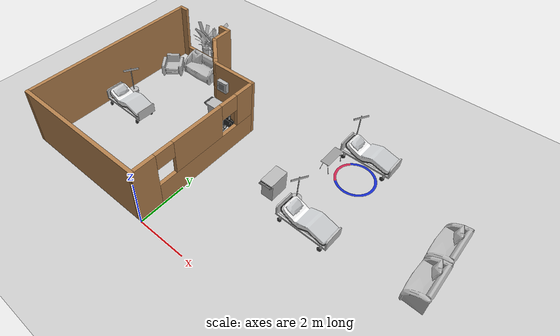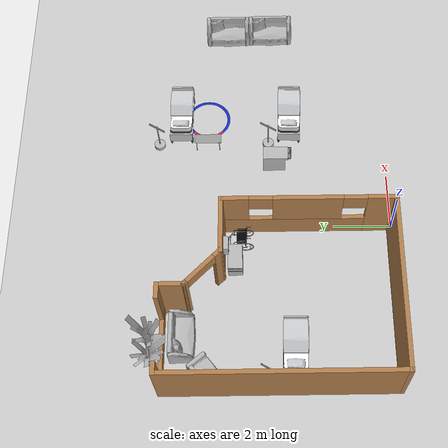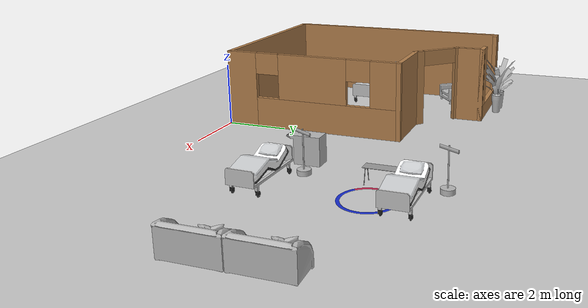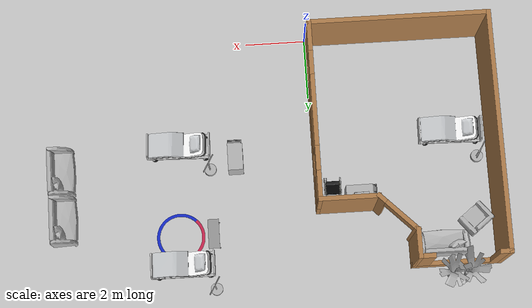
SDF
<sdf version="1.6">
 <world name="default">
  <model name="ground_plane">
   <static>1</static>
   <link name="link">
    <collision name="collision">
     <geometry><plane><normal>0 0 1</normal><size>100 100</size></plane></geometry>
     <surface>
      <contact><collide_bitmask>65535</collide_bitmask></contact>
      <friction><ode><mu>100</mu><mu2>50</mu2></ode></friction>
     </surface>
    </collision>
    <visual name="visual">
     <cast_shadows>0</cast_shadows>
     <geometry><plane><normal>0 0 1</normal><size>100 100</size></plane></geometry>
     <material>
      <script><uri>file://media/materials/scripts/gazebo.material</uri><name>Gazebo/Grey</name></script>
     </material>
    </visual>
   </link>
  </model>
  <model name="hospital_room_empty">
   <link name="Wall_0">
    <pose>-4e-06 -3.9165 0 0 -0 0</pose>
    <visual name="Wall_0_Visual">
     <pose>0 0 1.25 0 -0 0</pose>
     <geometry><box><size>6 0.15 2.5</size></box></geometry>
     <material>
      <script><uri>file://media/materials/scripts/gazebo.material</uri><name>Gazebo/Wood</name></script>
      <ambient>1 1 1 1</ambient>
     </material>
     <meta><layer>0</layer></meta>
    </visual>
    <collision name="Wall_0_Collision">
     <pose>0 0 1.25 0 -0 0</pose>
     <geometry><box><size>6 0.15 2.5</size></box></geometry>
     <surface>
      <friction>
       <ode><mu>1</mu><mu2>1</mu2><fdir1>0 0 0</fdir1><slip1>0</slip1><slip2>0</slip2></ode>
       <torsional>
        <coefficient>1</coefficient>
        <patch_radius>0</patch_radius>
        <surface_radius>0</surface_radius>
        <use_patch_radius>1</use_patch_radius>
        <ode><slip>0</slip></ode>
       </torsional>
      </friction>
      <bounce><restitution_coefficient>0</restitution_coefficient><threshold>1e+06</threshold></bounce>
      <contact>
       <collide_without_contact>0</collide_without_contact>
       <collide_without_contact_bitmask>1</collide_without_contact_bitmask>
       <collide_bitmask>1</collide_bitmask>
       <ode>
        <soft_cfm>0</soft_cfm>
        <soft_erp>0.2</soft_erp>
        <kp>1e+13</kp>
        <kd>1</kd>
        <max_vel>0.01</max_vel>
        <min_depth>0</min_depth>
       </ode>
       <bullet>
        <split_impulse>1</split_impulse>
        <split_impulse_penetration_threshold>-0.01</split_impulse_penetration_threshold>
        <soft_cfm>0</soft_cfm>
        <soft_erp>0.2</soft_erp>
        <kp>1e+13</kp>
        <kd>1</kd>
       </bullet>
      </contact>
     </surface>
    </collision>
   </link>
   <link name="Wall_3">
    <pose>-2.925 0 0 0 -0 1.5708</pose>
    <visual name="Wall_3_Visual">
     <pose>0 0 1.25 0 -0 0</pose>
     <geometry><box><size>7.98302 0.15 2.5</size></box></geometry>
     <material>
      <script><uri>file://media/materials/scripts/gazebo.material</uri><name>Gazebo/Wood</name></script>
      <ambient>1 1 1 1</ambient>
     </material>
     <meta><layer>0</layer></meta>
    </visual>
    <collision name="Wall_3_Collision">
     <pose>0 0 1.25 0 -0 0</pose>
     <geometry><box><size>7.98302 0.15 2.5</size></box></geometry>
     <surface>
      <friction>
       <ode><mu>1</mu><mu2>1</mu2><fdir1>0 0 0</fdir1><slip1>0</slip1><slip2>0</slip2></ode>
       <torsional>
        <coefficient>1</coefficient>
        <patch_radius>0</patch_radius>
        <surface_radius>0</surface_radius>
        <use_patch_radius>1</use_patch_radius>
        <ode><slip>0</slip></ode>
       </torsional>
      </friction>
      <bounce><restitution_coefficient>0</restitution_coefficient><threshold>1e+06</threshold></bounce>
      <contact>
       <collide_without_contact>0</collide_without_contact>
       <collide_without_contact_bitmask>1</collide_without_contact_bitmask>
       <collide_bitmask>1</collide_bitmask>
       <ode>
        <soft_cfm>0</soft_cfm>
        <soft_erp>0.2</soft_erp>
        <kp>1e+13</kp>
        <kd>1</kd>
        <max_vel>0.01</max_vel>
        <min_depth>0</min_depth>
       </ode>
       <bullet>
        <split_impulse>1</split_impulse>
        <split_impulse_penetration_threshold>-0.01</split_impulse_penetration_threshold>
        <soft_cfm>0</soft_cfm>
        <soft_erp>0.2</soft_erp>
        <kp>1e+13</kp>
        <kd>1</kd>
       </bullet>
      </contact>
     </surface>
    </collision>
   </link>
   <link name="Wall_4">
    <pose>-1.5 3.9165 0 0 -0 0</pose>
    <visual name="Wall_4_Visual_0">
     <pose>-1.28125 0 1.25 0 -0 0</pose>
     <geometry><box><size>0.437506 0.15 2.5</size></box></geometry>
     <material>
      <script><uri>file://media/materials/scripts/gazebo.material</uri><name>Gazebo/Wood</name></script>
      <ambient>1 1 1 1</ambient>
     </material>
     <meta><layer>0</layer></meta>
    </visual>
    <visual name="Wall_4_Visual_1">
     <pose>0.218753 0 0.25 0 -0 0</pose>
     <geometry><box><size>2.56249 0.15 0.5</size></box></geometry>
     <material>
      <script><uri>file://media/materials/scripts/gazebo.material</uri><name>Gazebo/Wood</name></script>
      <ambient>1 1 1 1</ambient>
     </material>
     <meta><layer>0</layer></meta>
    </visual>
    <visual name="Wall_4_Visual_2">
     <pose>1.21875 0 1.5 0 -0 0</pose>
     <geometry><box><size>0.562494 0.15 2</size></box></geometry>
     <material>
      <script><uri>file://media/materials/scripts/gazebo.material</uri><name>Gazebo/Wood</name></script>
      <ambient>1 1 1 1</ambient>
     </material>
     <meta><layer>0</layer></meta>
    </visual>
    <collision name="Wall_4_Collision_0">
     <pose>-1.28125 0 1.25 0 -0 0</pose>
     <geometry><box><size>0.437506 0.15 2.5</size></box></geometry>
     <surface>
      <friction>
       <ode><mu>1</mu><mu2>1</mu2><fdir1>0 0 0</fdir1><slip1>0</slip1><slip2>0</slip2></ode>
       <torsional>
        <coefficient>1</coefficient>
        <patch_radius>0</patch_radius>
        <surface_radius>0</surface_radius>
        <use_patch_radius>1</use_patch_radius>
        <ode><slip>0</slip></ode>
       </torsional>
      </friction>
      <bounce><restitution_coefficient>0</restitution_coefficient><threshold>1e+06</threshold></bounce>
      <contact>
       <collide_without_contact>0</collide_without_contact>
       <collide_without_contact_bitmask>1</collide_without_contact_bitmask>
       <collide_bitmask>1</collide_bitmask>
       <ode>
        <soft_cfm>0</soft_cfm>
        <soft_erp>0.2</soft_erp>
        <kp>1e+13</kp>
        <kd>1</kd>
        <max_vel>0.01</max_vel>
        <min_depth>0</min_depth>
       </ode>
       <bullet>
        <split_impulse>1</split_impulse>
        <split_impulse_penetration_threshold>-0.01</split_impulse_penetration_threshold>
        <soft_cfm>0</soft_cfm>
        <soft_erp>0.2</soft_erp>
        <kp>1e+13</kp>
        <kd>1</kd>
       </bullet>
      </contact>
     </surface>
    </collision>
    <collision name="Wall_4_Collision_1">
     <pose>0.218753 0 0.25 0 -0 0</pose>
     <geometry><box><size>2.56249 0.15 0.5</size></box></geometry>
     <surface>
      <friction>
       <ode><mu>1</mu><mu2>1</mu2><fdir1>0 0 0</fdir1><slip1>0</slip1><slip2>0</slip2></ode>
       <torsional>
        <coefficient>1</coefficient>
        <patch_radius>0</patch_radius>
        <surface_radius>0</surface_radius>
        <use_patch_radius>1</use_patch_radius>
        <ode><slip>0</slip></ode>
       </torsional>
      </friction>
      <bounce><restitution_coefficient>0</restitution_coefficient><threshold>1e+06</threshold></bounce>
      <contact>
       <collide_without_contact>0</collide_without_contact>
       <collide_without_contact_bitmask>1</collide_without_contact_bitmask>
       <collide_bitmask>1</collide_bitmask>
       <ode>
        <soft_cfm>0</soft_cfm>
        <soft_erp>0.2</soft_erp>
        <kp>1e+13</kp>
        <kd>1</kd>
        <max_vel>0.01</max_vel>
        <min_depth>0</min_depth>
       </ode>
       <bullet>
        <split_impulse>1</split_impulse>
        <split_impulse_penetration_threshold>-0.01</split_impulse_penetration_threshold>
        <soft_cfm>0</soft_cfm>
        <soft_erp>0.2</soft_erp>
        <kp>1e+13</kp>
        <kd>1</kd>
       </bullet>
      </contact>
     </surface>
    </collision>
    <collision name="Wall_4_Collision_2">
     <pose>1.21875 0 1.5 0 -0 0</pose>
     <geometry><box><size>0.562494 0.15 2</size></box></geometry>
     <surface>
      <friction>
       <ode><mu>1</mu><mu2>1</mu2><fdir1>0 0 0</fdir1><slip1>0</slip1><slip2>0</slip2></ode>
       <torsional>
        <coefficient>1</coefficient>
        <patch_radius>0</patch_radius>
        <surface_radius>0</surface_radius>
        <use_patch_radius>1</use_patch_radius>
        <ode><slip>0</slip></ode>
       </torsional>
      </friction>
      <bounce><restitution_coefficient>0</restitution_coefficient><threshold>1e+06</threshold></bounce>
      <contact>
       <collide_without_contact>0</collide_without_contact>
       <collide_without_contact_bitmask>1</collide_without_contact_bitmask>
       <collide_bitmask>1</collide_bitmask>
       <ode>
        <soft_cfm>0</soft_cfm>
        <soft_erp>0.2</soft_erp>
        <kp>1e+13</kp>
        <kd>1</kd>
        <max_vel>0.01</max_vel>
        <min_depth>0</min_depth>
       </ode>
       <bullet>
        <split_impulse>1</split_impulse>
        <split_impulse_penetration_threshold>-0.01</split_impulse_penetration_threshold>
        <soft_cfm>0</soft_cfm>
        <soft_erp>0.2</soft_erp>
        <kp>1e+13</kp>
        <kd>1</kd>
       </bullet>
      </contact>
     </surface>
    </collision>
   </link>
   <link name="Wall_5">
    <pose>-0.075004 3.4915 0 0 0 -1.5708</pose>
    <visual name="Wall_5_Visual">
     <pose>0 0 1.25 0 -0 0</pose>
     <geometry><box><size>1 0.15 2.5</size></box></geometry>
     <material>
      <script><uri>file://media/materials/scripts/gazebo.material</uri><name>Gazebo/Wood</name></script>
      <ambient>1 1 1 1</ambient>
     </material>
     <meta><layer>0</layer></meta>
    </visual>
    <collision name="Wall_5_Collision">
     <pose>0 0 1.25 0 -0 0</pose>
     <geometry><box><size>1 0.15 2.5</size></box></geometry>
     <surface>
      <friction>
       <ode><mu>1</mu><mu2>1</mu2><fdir1>0 0 0</fdir1><slip1>0</slip1><slip2>0</slip2></ode>
       <torsional>
        <coefficient>1</coefficient>
        <patch_radius>0</patch_radius>
        <surface_radius>0</surface_radius>
        <use_patch_radius>1</use_patch_radius>
        <ode><slip>0</slip></ode>
       </torsional>
      </friction>
      <bounce><restitution_coefficient>0</restitution_coefficient><threshold>1e+06</threshold></bounce>
      <contact>
       <collide_without_contact>0</collide_without_contact>
       <collide_without_contact_bitmask>1</collide_without_contact_bitmask>
       <collide_bitmask>1</collide_bitmask>
       <ode>
        <soft_cfm>0</soft_cfm>
        <soft_erp>0.2</soft_erp>
        <kp>1e+13</kp>
        <kd>1</kd>
        <max_vel>0.01</max_vel>
        <min_depth>0</min_depth>
       </ode>
       <bullet>
        <split_impulse>1</split_impulse>
        <split_impulse_penetration_threshold>-0.01</split_impulse_penetration_threshold>
        <soft_cfm>0</soft_cfm>
        <soft_erp>0.2</soft_erp>
        <kp>1e+13</kp>
        <kd>1</kd>
       </bullet>
      </contact>
     </surface>
    </collision>
   </link>
   <link name="Wall_7">
    <pose>2.925 -1 0 0 -0 1.5708</pose>
    <visual name="Wall_7_Visual_0">
     <pose>-2.47597 0 1.25 0 -0 0</pose>
     <geometry><box><size>1.03106 0.15 2.5</size></box></geometry>
     <material>
      <script><uri>file://media/materials/scripts/gazebo.material</uri><name>Gazebo/Wood</name></script>
      <ambient>0.921569 0.807843 0.615686 1</ambient>
     </material>
     <meta><layer>0</layer></meta>
    </visual>
    <visual name="Wall_7_Visual_1">
     <pose>0.515531 0 0.5 0 -0 0</pose>
     <geometry><box><size>4.95194 0.15 1</size></box></geometry>
     <material>
      <script><uri>file://media/materials/scripts/gazebo.material</uri><name>Gazebo/Wood</name></script>
      <ambient>0.921569 0.807843 0.615686 1</ambient>
     </material>
     <meta><layer>0</layer></meta>
    </visual>
    <visual name="Wall_7_Visual_2">
     <pose>0.016139 0 1.75 0 -0 0</pose>
     <geometry><box><size>2.35315 0.15 1.5</size></box></geometry>
     <material>
      <script><uri>file://media/materials/scripts/gazebo.material</uri><name>Gazebo/Wood</name></script>
      <ambient>0.921569 0.807843 0.615686 1</ambient>
     </material>
     <meta><layer>0</layer></meta>
    </visual>
    <visual name="Wall_7_Visual_3">
     <pose>2.49211 0 1.75 0 -0 0</pose>
     <geometry><box><size>0.998785 0.15 1.5</size></box></geometry>
     <material>
      <script><uri>file://media/materials/scripts/gazebo.material</uri><name>Gazebo/Wood</name></script>
      <ambient>0.921569 0.807843 0.615686 1</ambient>
     </material>
     <meta><layer>0</layer></meta>
    </visual>
    <visual name="Wall_7_Visual_4">
     <pose>-1.56044 0 2.15 0 -0 0</pose>
     <geometry><box><size>0.8 0.15 0.7</size></box></geometry>
     <material>
      <script><uri>file://media/materials/scripts/gazebo.material</uri><name>Gazebo/Wood</name></script>
      <ambient>0.921569 0.807843 0.615686 1</ambient>
     </material>
     <meta><layer>0</layer></meta>
    </visual>
    <visual name="Wall_7_Visual_5">
     <pose>1.59272 0 2.15 0 -0 0</pose>
     <geometry><box><size>0.8 0.15 0.7</size></box></geometry>
     <material>
      <script><uri>file://media/materials/scripts/gazebo.material</uri><name>Gazebo/Wood</name></script>
      <ambient>0.921569 0.807843 0.615686 1</ambient>
     </material>
     <meta><layer>0</layer></meta>
    </visual>
    <collision name="Wall_7_Collision_0">
     <pose>-2.47597 0 1.25 0 -0 0</pose>
     <geometry><box><size>1.03106 0.15 2.5</size></box></geometry>
     <surface>
      <friction>
       <ode><mu>1</mu><mu2>1</mu2><fdir1>0 0 0</fdir1><slip1>0</slip1><slip2>0</slip2></ode>
       <torsional>
        <coefficient>1</coefficient>
        <patch_radius>0</patch_radius>
        <surface_radius>0</surface_radius>
        <use_patch_radius>1</use_patch_radius>
        <ode><slip>0</slip></ode>
       </torsional>
      </friction>
      <bounce><restitution_coefficient>0</restitution_coefficient><threshold>1e+06</threshold></bounce>
      <contact>
       <collide_without_contact>0</collide_without_contact>
       <collide_without_contact_bitmask>1</collide_without_contact_bitmask>
       <collide_bitmask>1</collide_bitmask>
       <ode>
        <soft_cfm>0</soft_cfm>
        <soft_erp>0.2</soft_erp>
        <kp>1e+13</kp>
        <kd>1</kd>
        <max_vel>0.01</max_vel>
        <min_depth>0</min_depth>
       </ode>
       <bullet>
        <split_impulse>1</split_impulse>
        <split_impulse_penetration_threshold>-0.01</split_impulse_penetration_threshold>
        <soft_cfm>0</soft_cfm>
        <soft_erp>0.2</soft_erp>
        <kp>1e+13</kp>
        <kd>1</kd>
       </bullet>
      </contact>
     </surface>
    </collision>
    <collision name="Wall_7_Collision_1">
     <pose>0.515531 0 0.5 0 -0 0</pose>
     <geometry><box><size>4.95194 0.15 1</size></box></geometry>
     <surface>
      <friction>
       <ode><mu>1</mu><mu2>1</mu2><fdir1>0 0 0</fdir1><slip1>0</slip1><slip2>0</slip2></ode>
       <torsional>
        <coefficient>1</coefficient>
        <patch_radius>0</patch_radius>
        <surface_radius>0</surface_radius>
        <use_patch_radius>1</use_patch_radius>
        <ode><slip>0</slip></ode>
       </torsional>
      </friction>
      <bounce><restitution_coefficient>0</restitution_coefficient><threshold>1e+06</threshold></bounce>
      <contact>
       <collide_without_contact>0</collide_without_contact>
       <collide_without_contact_bitmask>1</collide_without_contact_bitmask>
       <collide_bitmask>1</collide_bitmask>
       <ode>
        <soft_cfm>0</soft_cfm>
        <soft_erp>0.2</soft_erp>
        <kp>1e+13</kp>
        <kd>1</kd>
        <max_vel>0.01</max_vel>
        <min_depth>0</min_depth>
       </ode>
       <bullet>
        <split_impulse>1</split_impulse>
        <split_impulse_penetration_threshold>-0.01</split_impulse_penetration_threshold>
        <soft_cfm>0</soft_cfm>
        <soft_erp>0.2</soft_erp>
        <kp>1e+13</kp>
        <kd>1</kd>
       </bullet>
      </contact>
     </surface>
    </collision>
    <collision name="Wall_7_Collision_2">
     <pose>0.016139 0 1.75 0 -0 0</pose>
     <geometry><box><size>2.35315 0.15 1.5</size></box></geometry>
     <surface>
      <friction>
       <ode><mu>1</mu><mu2>1</mu2><fdir1>0 0 0</fdir1><slip1>0</slip1><slip2>0</slip2></ode>
       <torsional>
        <coefficient>1</coefficient>
        <patch_radius>0</patch_radius>
        <surface_radius>0</surface_radius>
        <use_patch_radius>1</use_patch_radius>
        <ode><slip>0</slip></ode>
       </torsional>
      </friction>
      <bounce><restitution_coefficient>0</restitution_coefficient><threshold>1e+06</threshold></bounce>
      <contact>
       <collide_without_contact>0</collide_without_contact>
       <collide_without_contact_bitmask>1</collide_without_contact_bitmask>
       <collide_bitmask>1</collide_bitmask>
       <ode>
        <soft_cfm>0</soft_cfm>
        <soft_erp>0.2</soft_erp>
        <kp>1e+13</kp>
        <kd>1</kd>
        <max_vel>0.01</max_vel>
        <min_depth>0</min_depth>
       </ode>
       <bullet>
        <split_impulse>1</split_impulse>
        <split_impulse_penetration_threshold>-0.01</split_impulse_penetration_threshold>
        <soft_cfm>0</soft_cfm>
        <soft_erp>0.2</soft_erp>
        <kp>1e+13</kp>
        <kd>1</kd>
       </bullet>
      </contact>
     </surface>
    </collision>
    <collision name="Wall_7_Collision_3">
     <pose>2.49211 0 1.75 0 -0 0</pose>
     <geometry><box><size>0.998785 0.15 1.5</size></box></geometry>
     <surface>
      <friction>
       <ode><mu>1</mu><mu2>1</mu2><fdir1>0 0 0</fdir1><slip1>0</slip1><slip2>0</slip2></ode>
       <torsional>
        <coefficient>1</coefficient>
        <patch_radius>0</patch_radius>
        <surface_radius>0</surface_radius>
        <use_patch_radius>1</use_patch_radius>
        <ode><slip>0</slip></ode>
       </torsional>
      </friction>
      <bounce><restitution_coefficient>0</restitution_coefficient><threshold>1e+06</threshold></bounce>
      <contact>
       <collide_without_contact>0</collide_without_contact>
       <collide_without_contact_bitmask>1</collide_without_contact_bitmask>
       <collide_bitmask>1</collide_bitmask>
       <ode>
        <soft_cfm>0</soft_cfm>
        <soft_erp>0.2</soft_erp>
        <kp>1e+13</kp>
        <kd>1</kd>
        <max_vel>0.01</max_vel>
        <min_depth>0</min_depth>
       </ode>
       <bullet>
        <split_impulse>1</split_impulse>
        <split_impulse_penetration_threshold>-0.01</split_impulse_penetration_threshold>
        <soft_cfm>0</soft_cfm>
        <soft_erp>0.2</soft_erp>
        <kp>1e+13</kp>
        <kd>1</kd>
       </bullet>
      </contact>
     </surface>
    </collision>
    <collision name="Wall_7_Collision_4">
     <pose>-1.56044 0 2.15 0 -0 0</pose>
     <geometry><box><size>0.8 0.15 0.7</size></box></geometry>
     <surface>
      <friction>
       <ode><mu>1</mu><mu2>1</mu2><fdir1>0 0 0</fdir1><slip1>0</slip1><slip2>0</slip2></ode>
       <torsional>
        <coefficient>1</coefficient>
        <patch_radius>0</patch_radius>
        <surface_radius>0</surface_radius>
        <use_patch_radius>1</use_patch_radius>
        <ode><slip>0</slip></ode>
       </torsional>
      </friction>
      <bounce><restitution_coefficient>0</restitution_coefficient><threshold>1e+06</threshold></bounce>
      <contact>
       <collide_without_contact>0</collide_without_contact>
       <collide_without_contact_bitmask>1</collide_without_contact_bitmask>
       <collide_bitmask>1</collide_bitmask>
       <ode>
        <soft_cfm>0</soft_cfm>
        <soft_erp>0.2</soft_erp>
        <kp>1e+13</kp>
        <kd>1</kd>
        <max_vel>0.01</max_vel>
        <min_depth>0</min_depth>
       </ode>
       <bullet>
        <split_impulse>1</split_impulse>
        <split_impulse_penetration_threshold>-0.01</split_impulse_penetration_threshold>
        <soft_cfm>0</soft_cfm>
        <soft_erp>0.2</soft_erp>
        <kp>1e+13</kp>
        <kd>1</kd>
       </bullet>
      </contact>
     </surface>
    </collision>
    <collision name="Wall_7_Collision_5">
     <pose>1.59272 0 2.15 0 -0 0</pose>
     <geometry><box><size>0.8 0.15 0.7</size></box></geometry>
     <surface>
      <friction>
       <ode><mu>1</mu><mu2>1</mu2><fdir1>0 0 0</fdir1><slip1>0</slip1><slip2>0</slip2></ode>
       <torsional>
        <coefficient>1</coefficient>
        <patch_radius>0</patch_radius>
        <surface_radius>0</surface_radius>
        <use_patch_radius>1</use_patch_radius>
        <ode><slip>0</slip></ode>
       </torsional>
      </friction>
      <bounce><restitution_coefficient>0</restitution_coefficient><threshold>1e+06</threshold></bounce>
      <contact>
       <collide_without_contact>0</collide_without_contact>
       <collide_without_contact_bitmask>1</collide_without_contact_bitmask>
       <collide_bitmask>1</collide_bitmask>
       <ode>
        <soft_cfm>0</soft_cfm>
        <soft_erp>0.2</soft_erp>
        <kp>1e+13</kp>
        <kd>1</kd>
        <max_vel>0.01</max_vel>
        <min_depth>0</min_depth>
       </ode>
       <bullet>
        <split_impulse>1</split_impulse>
        <split_impulse_penetration_threshold>-0.01</split_impulse_penetration_threshold>
        <soft_cfm>0</soft_cfm>
        <soft_erp>0.2</soft_erp>
        <kp>1e+13</kp>
        <kd>1</kd>
       </bullet>
      </contact>
     </surface>
    </collision>
   </link>
   <link name="Wall_8">
    <pose>2 1.9166 0 0 -0 3.14148</pose>
    <visual name="Wall_8_Visual">
     <pose>0 0 1.25 0 -0 0</pose>
     <geometry><box><size>2 0.15 2.5</size></box></geometry>
     <material>
      <script><uri>file://media/materials/scripts/gazebo.material</uri><name>Gazebo/Wood</name></script>
      <ambient>1 1 1 1</ambient>
     </material>
     <meta><layer>0</layer></meta>
    </visual>
    <collision name="Wall_8_Collision">
     <pose>0 0 1.25 0 -0 0</pose>
     <geometry><box><size>2 0.15 2.5</size></box></geometry>
     <surface>
      <friction>
       <ode><mu>1</mu><mu2>1</mu2><fdir1>0 0 0</fdir1><slip1>0</slip1><slip2>0</slip2></ode>
       <torsional>
        <coefficient>1</coefficient>
        <patch_radius>0</patch_radius>
        <surface_radius>0</surface_radius>
        <use_patch_radius>1</use_patch_radius>
        <ode><slip>0</slip></ode>
       </torsional>
      </friction>
      <bounce><restitution_coefficient>0</restitution_coefficient><threshold>1e+06</threshold></bounce>
      <contact>
       <collide_without_contact>0</collide_without_contact>
       <collide_without_contact_bitmask>1</collide_without_contact_bitmask>
       <collide_bitmask>1</collide_bitmask>
       <ode>
        <soft_cfm>0</soft_cfm>
        <soft_erp>0.2</soft_erp>
        <kp>1e+13</kp>
        <kd>1</kd>
        <max_vel>0.01</max_vel>
        <min_depth>0</min_depth>
       </ode>
       <bullet>
        <split_impulse>1</split_impulse>
        <split_impulse_penetration_threshold>-0.01</split_impulse_penetration_threshold>
        <soft_cfm>0</soft_cfm>
        <soft_erp>0.2</soft_erp>
        <kp>1e+13</kp>
        <kd>1</kd>
       </bullet>
      </contact>
     </surface>
    </collision>
   </link>
   <link name="Wall_9">
    <pose>0.499996 2.4916 0 0 -0 2.35628</pose>
    <visual name="Wall_9_Visual_1">
     <pose>0.785148 0 1.25 0 -0 0</pose>
     <geometry><box><size>0.205905 0.15 2.5</size></box></geometry>
     <material>
      <script><uri>file://media/materials/scripts/gazebo.material</uri><name>Gazebo/Wood</name></script>
      <ambient>1 1 1 1</ambient>
     </material>
     <meta><layer>0</layer></meta>
    </visual>
    <visual name="Wall_9_Visual_0">
     <pose>-0.702952 0 1.25 0 -0 0</pose>
     <geometry><box><size>0.370295 0.15 2.5</size></box></geometry>
     <material>
      <script><uri>file://media/materials/scripts/gazebo.material</uri><name>Gazebo/Wood</name></script>
      <ambient>1 1 1 1</ambient>
     </material>
     <meta><layer>0</layer></meta>
    </visual>
    <visual name="Wall_9_Visual_2">
     <pose>0.082195 0 2.25 0 -0 0</pose>
     <geometry><box><size>1.2 0.15 0.5</size></box></geometry>
     <material>
      <script><uri>file://media/materials/scripts/gazebo.material</uri><name>Gazebo/Wood</name></script>
      <ambient>1 1 1 1</ambient>
     </material>
     <meta><layer>0</layer></meta>
    </visual>
    <collision name="Wall_9_Collision_0">
     <pose>-0.702952 0 1.25 0 -0 0</pose>
     <geometry><box><size>0.370295 0.15 2.5</size></box></geometry>
     <surface>
      <friction>
       <ode><mu>1</mu><mu2>1</mu2><fdir1>0 0 0</fdir1><slip1>0</slip1><slip2>0</slip2></ode>
       <torsional>
        <coefficient>1</coefficient>
        <patch_radius>0</patch_radius>
        <surface_radius>0</surface_radius>
        <use_patch_radius>1</use_patch_radius>
        <ode><slip>0</slip></ode>
       </torsional>
      </friction>
      <bounce><restitution_coefficient>0</restitution_coefficient><threshold>1e+06</threshold></bounce>
      <contact>
       <collide_without_contact>0</collide_without_contact>
       <collide_without_contact_bitmask>1</collide_without_contact_bitmask>
       <collide_bitmask>1</collide_bitmask>
       <ode>
        <soft_cfm>0</soft_cfm>
        <soft_erp>0.2</soft_erp>
        <kp>1e+13</kp>
        <kd>1</kd>
        <max_vel>0.01</max_vel>
        <min_depth>0</min_depth>
       </ode>
       <bullet>
        <split_impulse>1</split_impulse>
        <split_impulse_penetration_threshold>-0.01</split_impulse_penetration_threshold>
        <soft_cfm>0</soft_cfm>
        <soft_erp>0.2</soft_erp>
        <kp>1e+13</kp>
        <kd>1</kd>
       </bullet>
      </contact>
     </surface>
    </collision>
    <collision name="Wall_9_Collision_1">
     <pose>0.785148 0 1.25 0 -0 0</pose>
     <geometry><box><size>0.205905 0.15 2.5</size></box></geometry>
     <surface>
      <friction>
       <ode><mu>1</mu><mu2>1</mu2><fdir1>0 0 0</fdir1><slip1>0</slip1><slip2>0</slip2></ode>
       <torsional>
        <coefficient>1</coefficient>
        <patch_radius>0</patch_radius>
        <surface_radius>0</surface_radius>
        <use_patch_radius>1</use_patch_radius>
        <ode><slip>0</slip></ode>
       </torsional>
      </friction>
      <bounce><restitution_coefficient>0</restitution_coefficient><threshold>1e+06</threshold></bounce>
      <contact>
       <collide_without_contact>0</collide_without_contact>
       <collide_without_contact_bitmask>1</collide_without_contact_bitmask>
       <collide_bitmask>1</collide_bitmask>
       <ode>
        <soft_cfm>0</soft_cfm>
        <soft_erp>0.2</soft_erp>
        <kp>1e+13</kp>
        <kd>1</kd>
        <max_vel>0.01</max_vel>
        <min_depth>0</min_depth>
       </ode>
       <bullet>
        <split_impulse>1</split_impulse>
        <split_impulse_penetration_threshold>-0.01</split_impulse_penetration_threshold>
        <soft_cfm>0</soft_cfm>
        <soft_erp>0.2</soft_erp>
        <kp>1e+13</kp>
        <kd>1</kd>
       </bullet>
      </contact>
     </surface>
    </collision>
    <collision name="Wall_9_Collision_2">
     <pose>0.082195 0 2.25 0 -0 0</pose>
     <geometry><box><size>1.2 0.15 0.5</size></box></geometry>
     <surface>
      <friction>
       <ode><mu>1</mu><mu2>1</mu2><fdir1>0 0 0</fdir1><slip1>0</slip1><slip2>0</slip2></ode>
       <torsional>
        <coefficient>1</coefficient>
        <patch_radius>0</patch_radius>
        <surface_radius>0</surface_radius>
        <use_patch_radius>1</use_patch_radius>
        <ode><slip>0</slip></ode>
       </torsional>
      </friction>
      <bounce><restitution_coefficient>0</restitution_coefficient><threshold>1e+06</threshold></bounce>
      <contact>
       <collide_without_contact>0</collide_without_contact>
       <collide_without_contact_bitmask>1</collide_without_contact_bitmask>
       <collide_bitmask>1</collide_bitmask>
       <ode>
        <soft_cfm>0</soft_cfm>
        <soft_erp>0.2</soft_erp>
        <kp>1e+13</kp>
        <kd>1</kd>
        <max_vel>0.01</max_vel>
        <min_depth>0</min_depth>
       </ode>
       <bullet>
        <split_impulse>1</split_impulse>
        <split_impulse_penetration_threshold>-0.01</split_impulse_penetration_threshold>
        <soft_cfm>0</soft_cfm>
        <soft_erp>0.2</soft_erp>
        <kp>1e+13</kp>
        <kd>1</kd>
       </bullet>
      </contact>
     </surface>
    </collision>
   </link>
   <static>1</static>
   <pose>-3.00848 4.0001 0 0 -0 0</pose>
  </model>
  <model name="iv_pole">
   <static>0</static>
   <link name="link">
    <inertial>
     <mass>5</mass>
     <inertia><ixx>1</ixx><ixy>0</ixy><ixz>0</ixz><iyy>1</iyy><iyz>0</iyz><izz>1</izz></inertia>
    </inertial>
    <collision name="collision">
     <geometry><mesh><uri>model://iv_pole/iv_pole_collision.dae</uri></mesh></geometry>
    </collision>
    <visual name="visual"><geometry><mesh><uri>model://iv_pole/iv_pole.dae</uri></mesh></geometry></visual>
   </link>
   <pose>-5.51045 4.41803 0.008029 1e-06 0 -0.0001</pose>
  </model>
  <model name="plant">
   <static>1</static>
   <link name="link">
    <inertial>
     <pose>0 -0.2 0 0 -0 0</pose>
     <mass>10</mass>
     <inertia><ixx>1</ixx><ixy>0</ixy><ixz>0</ixz><iyy>1</iyy><iyz>0</iyz><izz>1</izz></inertia>
    </inertial>
    <collision name="collision">
     <geometry><mesh><uri>model://plant/plant_collision.dae</uri></mesh></geometry>
    </collision>
    <visual name="visual"><geometry><mesh><uri>model://plant/plant.dae</uri></mesh></geometry></visual>
   </link>
   <pose>-4.32484 8.2802 0 0 -0 0</pose>
  </model>
  <model name="round_sofa">
   <static>1</static>
   <link name="link">
    <inertial>
     <mass>5</mass>
     <inertia><ixx>1</ixx><ixy>0</ixy><ixz>0</ixz><iyy>1</iyy><iyz>0</iyz><izz>1</izz></inertia>
    </inertial>
    <collision name="collision">
     <pose>-0.09 -0.05 0.425 0 -0 0</pose>
     <geometry><box><size>1.65 0.85 0.85</size></box></geometry>
    </collision>
    <visual name="visual"><geometry><mesh><uri>model://round_sofa/round_sofa.dae</uri></mesh></geometry></visual>
   </link>
   <pose>-4.01832 7.29838 0 0 -0 0</pose>
  </model>
  <model name="single_sofa">
   <static>1</static>
   <link name="link">
    <inertial>
     <mass>10</mass>
     <inertia><ixx>1</ixx><ixy>0</ixy><ixz>0</ixz><iyy>1</iyy><iyz>0</iyz><izz>1</izz></inertia>
    </inertial>
    <collision name="collision">
     <pose>0 0.07 0.39 0 -0 0</pose>
     <geometry><box><size>0.93 0.738 0.78</size></box></geometry>
    </collision>
    <visual name="visual">
     <geometry><mesh><uri>model://single_sofa/single_sofa.dae</uri></mesh></geometry>
    </visual>
   </link>
   <pose>-5.21333 6.4518 0 0 -0 0.668944</pose>
  </model>
  <model name="wall_locker">
   <static>1</static>
   <link name="link">
    <inertial>
     <mass>10</mass>
     <inertia><ixx>1</ixx><ixy>0</ixy><ixz>0</ixz><iyy>1</iyy><iyz>0</iyz><izz>1</izz></inertia>
    </inertial>
    <collision name="collision">
     <pose>-0.01 0.03 0.232 0 -0 0</pose>
     <geometry><box><size>0.17 0.465 0.465</size></box></geometry>
    </collision>
    <visual name="visual">
     <geometry><mesh><uri>model://wall_locker/wall_locker.dae</uri></mesh></geometry>
    </visual>
   </link>
   <pose>-1.46599 5.75308 1.44948 0 0 -1.55729</pose>
  </model>
  <model name="service_cart">
   <static>0</static>
   <link name="link">
    <inertial>
     <mass>10</mass>
     <inertia><ixx>1</ixx><ixy>0</ixy><ixz>0</ixz><iyy>1</iyy><iyz>0</iyz><izz>1</izz></inertia>
    </inertial>
    <collision name="collision">
     <geometry><mesh><uri>model://service_cart/service_cart_collision.dae</uri></mesh></geometry>
    </collision>
    <visual name="visual">
     <geometry><mesh><uri>model://service_cart/service_cart.dae</uri></mesh></geometry>
    </visual>
   </link>
   <pose>-1.4884 5.45587 -0.000842 0 9e-06 -1.56544</pose>
  </model>
  <model name="iv_pole_0">
   <static>0</static>
   <link name="link">
    <inertial>
     <mass>5</mass>
     <inertia><ixx>1</ixx><ixy>0</ixy><ixz>0</ixz><iyy>1</iyy><iyz>0</iyz><izz>1</izz></inertia>
    </inertial>
    <collision name="collision">
     <geometry><mesh><uri>model://iv_pole/iv_pole_collision.dae</uri></mesh></geometry>
    </collision>
    <visual name="visual"><geometry><mesh><uri>model://iv_pole/iv_pole.dae</uri></mesh></geometry></visual>
   </link>
   <pose>3.42815 4.35689 0.008029 1e-06 -0 -9.4e-05</pose>
  </model>
  <model name="iv_pole_1">
   <static>0</static>
   <link name="link">
    <inertial>
     <mass>5</mass>
     <inertia><ixx>1</ixx><ixy>0</ixy><ixz>0</ixz><iyy>1</iyy><iyz>0</iyz><izz>1</izz></inertia>
    </inertial>
    <collision name="collision">
     <geometry><mesh><uri>model://iv_pole/iv_pole_collision.dae</uri></mesh></geometry>
    </collision>
    <visual name="visual"><geometry><mesh><uri>model://iv_pole/iv_pole.dae</uri></mesh></geometry></visual>
   </link>
   <pose>3.41493 8.36709 0.008029 0 0 -8.5e-05</pose>
  </model>
  <model name="round_sofa_1">
   <static>1</static>
   <link name="link">
    <inertial>
     <mass>5</mass>
     <inertia><ixx>1</ixx><ixy>0</ixy><ixz>0</ixz><iyy>1</iyy><iyz>0</iyz><izz>1</izz></inertia>
    </inertial>
    <collision name="collision">
     <pose>-0.09 -0.05 0.425 0 -0 0</pose>
     <geometry><box><size>1.65 0.85 0.85</size></box></geometry>
    </collision>
    <visual name="visual"><geometry><mesh><uri>model://round_sofa/round_sofa.dae</uri></mesh></geometry></visual>
   </link>
   <pose>8.38329 5.69223 0 0 0 -1.56602</pose>
  </model>
  <model name="round_sofa_2">
   <static>1</static>
   <link name="link">
    <inertial>
     <mass>5</mass>
     <inertia><ixx>1</ixx><ixy>0</ixy><ixz>0</ixz><iyy>1</iyy><iyz>0</iyz><izz>1</izz></inertia>
    </inertial>
    <collision name="collision">
     <pose>-0.09 -0.05 0.425 0 -0 0</pose>
     <geometry><box><size>1.65 0.85 0.85</size></box></geometry>
    </collision>
    <visual name="visual"><geometry><mesh><uri>model://round_sofa/round_sofa.dae</uri></mesh></geometry></visual>
   </link>
   <pose>8.41152 4.06494 0.003564 0 0 -1.56248</pose>
  </model>
  <model name="ikea_desk_0">
   <static>1</static>
   <link name="link">
    <inertial>
     <mass>5</mass>
     <inertia><ixx>1</ixx><ixy>0</ixy><ixz>0</ixz><iyy>1</iyy><iyz>0</iyz><izz>1</izz></inertia>
    </inertial>
    <collision name="collision">
     <pose>0 0.03 0.227 0 -0 0</pose>
     <geometry><box><size>0.416 0.98 0.455</size></box></geometry>
    </collision>
    <visual name="visual"><geometry><mesh><uri>model://ikea_desk/ikea_desk.dae</uri></mesh></geometry></visual>
   </link>
   <pose>3.41762 6.48585 0 0 -0 0</pose>
  </model>
  <model name="wheel_chair_0">
   <static>0</static>
   <link name="link">
    <inertial>
     <pose>0 -0.2 0 0 -0 0</pose>
     <mass>10</mass>
     <inertia><ixx>1</ixx><ixy>0</ixy><ixz>0</ixz><iyy>1</iyy><iyz>0</iyz><izz>1</izz></inertia>
    </inertial>
    <collision name="collision">
     <geometry><mesh><uri>model://wheel_chair/wheel_chair_collision.dae</uri></mesh></geometry>
    </collision>
    <visual name="visual">
     <geometry><mesh><uri>model://wheel_chair/wheel_chair.dae</uri></mesh></geometry>
    </visual>
   </link>
   <pose>-0.584087 4.93061 0.003736 0.016422 -0.013495 -3.12475</pose>
  </model>
  <model name="service_cart_8">
   <static>0</static>
   <link name="link">
    <inertial>
     <mass>10</mass>
     <inertia><ixx>1</ixx><ixy>0</ixy><ixz>0</ixz><iyy>1</iyy><iyz>0</iyz><izz>1</izz></inertia>
    </inertial>
    <collision name="collision">
     <geometry><mesh><uri>model://service_cart/service_cart_collision.dae</uri></mesh></geometry>
    </collision>
    <visual name="visual">
     <geometry><mesh><uri>model://service_cart/service_cart.dae</uri></mesh></geometry>
    </visual>
   </link>
   <pose>2.59325 4.01449 -0.000842 0 9e-06 0</pose>
  </model>
  <model name="hospital_bed_0">
   <static>0</static>
   <link name="link">
    <inertial>
     <mass>20</mass>
     <inertia><ixx>1</ixx><ixy>0</ixy><ixz>0</ixz><iyy>1</iyy><iyz>0</iyz><izz>1</izz></inertia>
    </inertial>
    <collision name="collision">
     <geometry><mesh><uri>model://hospital_bed/hospital_bed_collision.dae</uri></mesh></geometry>
    </collision>
    <visual name="visual">
     <geometry><mesh><uri>model://hospital_bed/hospital_bed.dae</uri></mesh></geometry>
    </visual>
   </link>
   <pose>-4.62642 3.49268 -0.001 0 -0 3.1193</pose>
  </model>
  <model name="hospital_bed_2">
   <static>0</static>
   <link name="link">
    <inertial>
     <mass>20</mass>
     <inertia><ixx>1</ixx><ixy>0</ixy><ixz>0</ixz><iyy>1</iyy><iyz>0</iyz><izz>1</izz></inertia>
    </inertial>
    <collision name="collision">
     <geometry><mesh><uri>model://hospital_bed/hospital_bed_collision.dae</uri></mesh></geometry>
    </collision>
    <visual name="visual">
     <geometry><mesh><uri>model://hospital_bed/hospital_bed.dae</uri></mesh></geometry>
    </visual>
   </link>
   <pose>4.4639 7.48237 -0.001 0 -0 3.13543</pose>
  </model>
  <model name="hospital_bed_3">
   <static>0</static>
   <link name="link">
    <inertial>
     <mass>20</mass>
     <inertia><ixx>1</ixx><ixy>0</ixy><ixz>0</ixz><iyy>1</iyy><iyz>0</iyz><izz>1</izz></inertia>
    </inertial>
    <collision name="collision">
     <geometry><mesh><uri>model://hospital_bed/hospital_bed_collision.dae</uri></mesh></geometry>
    </collision>
    <visual name="visual">
     <geometry><mesh><uri>model://hospital_bed/hospital_bed.dae</uri></mesh></geometry>
    </visual>
   </link>
   <pose>4.43844 3.51224 -0.001 0 -0 3.1121</pose>
  </model>
  <model name="circle_marker_1">
   <static>1</static>
   <link name="link">
    <inertial>
     <mass>10</mass>
     <inertia><ixx>1</ixx><ixy>0</ixy><ixz>0</ixz><iyy>1</iyy><iyz>0</iyz><izz>1</izz></inertia>
    </inertial>
    <visual name="visual">
     <geometry><mesh><uri>model://circle_marker/circle_marker.dae</uri></mesh></geometry>
    </visual>
   </link>
   <pose>4.51019 6.5119 0 0 -0 0</pose>
  </model>
 </world>
</sdf>
